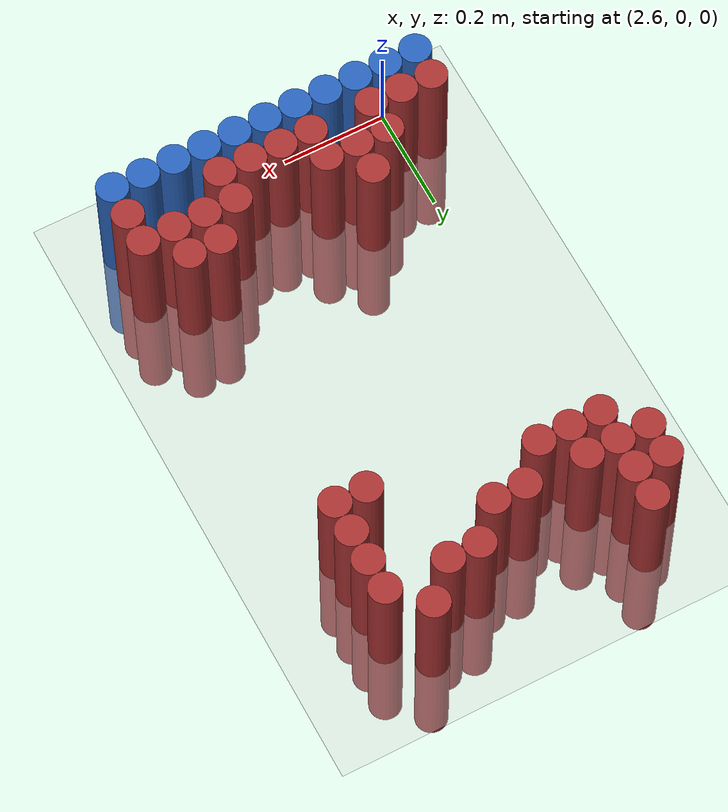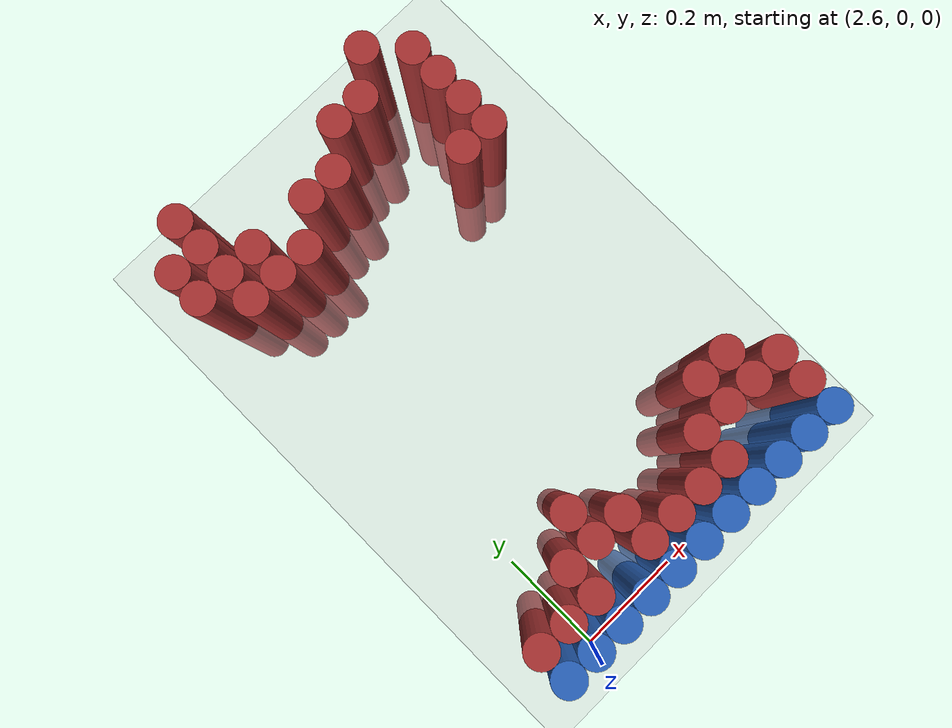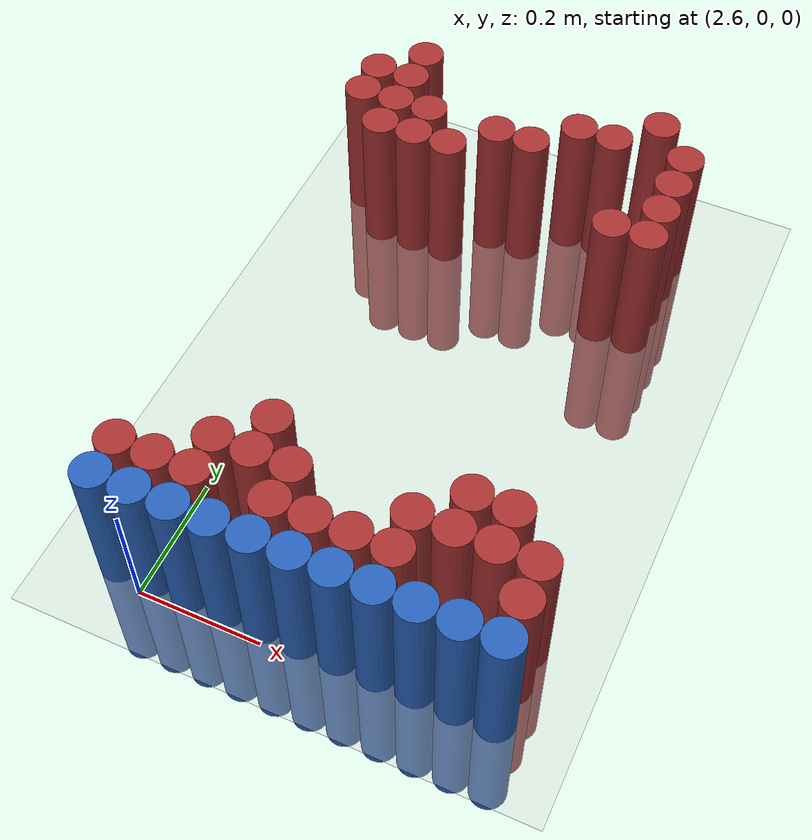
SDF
<sdf version="1.6">
 <world name="default">
  <model name="ground_plane">
   <static>1</static>
   <link name="link">
    <collision name="collision">
     <geometry><plane><normal>0 0 1</normal><size>100 100</size></plane></geometry>
     <surface><friction><ode><mu>100</mu><mu2>50</mu2></ode></friction></surface>
    </collision>
    <visual name="visual">
     <cast_shadows>0</cast_shadows>
     <geometry><plane><normal>0 0 1</normal><size>100 100</size></plane></geometry>
     <material>
      <script><uri>file://media/materials/scripts/gazebo.material</uri><name>Gazebo/Grey</name></script>
     </material>
    </visual>
   </link>
  </model>
  <model name="unit_cylinder_247">
   <static>1</static>
   <pose>2.610000 0.990000 0.000000 0.000000 0.000000 0.000000</pose>
   <link name="link">
    <inertial>
     <mass>1</mass>
     <inertia><ixx>0.145833</ixx><ixy>0</ixy><ixz>0</ixz><iyy>0.145833</iyy><iyz>0</iyz><izz>0.125</izz></inertia>
    </inertial>
    <collision name="collision">
     <geometry><cylinder><radius>0.030000</radius><length>0.5</length></cylinder></geometry>
    </collision>
    <visual name="visual">
     <geometry><cylinder><radius>0.030000</radius><length>0.5</length></cylinder></geometry>
     <material>
      <ambient>0.648000 0.192000 0.192000 1</ambient>
      <diffuse>0.648000 0.192000 0.192000 1</diffuse>
     </material>
     <material>
      <script><name>Gazebo/Grey</name><uri>file://media/materials/scripts/gazebo.material</uri></script>
     </material>
    </visual>
   </link>
  </model>
  <model name="unit_cylinder_248">
   <static>1</static>
   <pose>3.030000 0.990000 0.000000 0.000000 0.000000 0.000000</pose>
   <link name="link">
    <inertial>
     <mass>1</mass>
     <inertia><ixx>0.145833</ixx><ixy>0</ixy><ixz>0</ixz><iyy>0.145833</iyy><iyz>0</iyz><izz>0.125</izz></inertia>
    </inertial>
    <collision name="collision">
     <geometry><cylinder><radius>0.030000</radius><length>0.5</length></cylinder></geometry>
    </collision>
    <visual name="visual">
     <geometry><cylinder><radius>0.030000</radius><length>0.5</length></cylinder></geometry>
     <material>
      <ambient>0.648000 0.192000 0.192000 1</ambient>
      <diffuse>0.648000 0.192000 0.192000 1</diffuse>
     </material>
     <material>
      <script><name>Gazebo/Grey</name><uri>file://media/materials/scripts/gazebo.material</uri></script>
     </material>
    </visual>
   </link>
  </model>
  <model name="unit_cylinder_259">
   <static>1</static>
   <pose>2.550000 0.930000 0.000000 0.000000 0.000000 0.000000</pose>
   <link name="link">
    <inertial>
     <mass>1</mass>
     <inertia><ixx>0.145833</ixx><ixy>0</ixy><ixz>0</ixz><iyy>0.145833</iyy><iyz>0</iyz><izz>0.125</izz></inertia>
    </inertial>
    <collision name="collision">
     <geometry><cylinder><radius>0.030000</radius><length>0.5</length></cylinder></geometry>
    </collision>
    <visual name="visual">
     <geometry><cylinder><radius>0.030000</radius><length>0.5</length></cylinder></geometry>
     <material>
      <ambient>0.648000 0.192000 0.192000 1</ambient>
      <diffuse>0.648000 0.192000 0.192000 1</diffuse>
     </material>
     <material>
      <script><name>Gazebo/Grey</name><uri>file://media/materials/scripts/gazebo.material</uri></script>
     </material>
    </visual>
   </link>
  </model>
  <model name="unit_cylinder_260">
   <static>1</static>
   <pose>2.610000 0.930000 0.000000 0.000000 0.000000 0.000000</pose>
   <link name="link">
    <inertial>
     <mass>1</mass>
     <inertia><ixx>0.145833</ixx><ixy>0</ixy><ixz>0</ixz><iyy>0.145833</iyy><iyz>0</iyz><izz>0.125</izz></inertia>
    </inertial>
    <collision name="collision">
     <geometry><cylinder><radius>0.030000</radius><length>0.5</length></cylinder></geometry>
    </collision>
    <visual name="visual">
     <geometry><cylinder><radius>0.030000</radius><length>0.5</length></cylinder></geometry>
     <material>
      <ambient>0.648000 0.192000 0.192000 1</ambient>
      <diffuse>0.648000 0.192000 0.192000 1</diffuse>
     </material>
     <material>
      <script><name>Gazebo/Grey</name><uri>file://media/materials/scripts/gazebo.material</uri></script>
     </material>
    </visual>
   </link>
  </model>
  <model name="unit_cylinder_261">
   <static>1</static>
   <pose>2.910000 0.930000 0.000000 0.000000 0.000000 0.000000</pose>
   <link name="link">
    <inertial>
     <mass>1</mass>
     <inertia><ixx>0.145833</ixx><ixy>0</ixy><ixz>0</ixz><iyy>0.145833</iyy><iyz>0</iyz><izz>0.125</izz></inertia>
    </inertial>
    <collision name="collision">
     <geometry><cylinder><radius>0.030000</radius><length>0.5</length></cylinder></geometry>
    </collision>
    <visual name="visual">
     <geometry><cylinder><radius>0.030000</radius><length>0.5</length></cylinder></geometry>
     <material>
      <ambient>0.648000 0.192000 0.192000 1</ambient>
      <diffuse>0.648000 0.192000 0.192000 1</diffuse>
     </material>
     <material>
      <script><name>Gazebo/Grey</name><uri>file://media/materials/scripts/gazebo.material</uri></script>
     </material>
    </visual>
   </link>
  </model>
  <model name="unit_cylinder_262">
   <static>1</static>
   <pose>2.970000 0.930000 0.000000 0.000000 0.000000 0.000000</pose>
   <link name="link">
    <inertial>
     <mass>1</mass>
     <inertia><ixx>0.145833</ixx><ixy>0</ixy><ixz>0</ixz><iyy>0.145833</iyy><iyz>0</iyz><izz>0.125</izz></inertia>
    </inertial>
    <collision name="collision">
     <geometry><cylinder><radius>0.030000</radius><length>0.5</length></cylinder></geometry>
    </collision>
    <visual name="visual">
     <geometry><cylinder><radius>0.030000</radius><length>0.5</length></cylinder></geometry>
     <material>
      <ambient>0.648000 0.192000 0.192000 1</ambient>
      <diffuse>0.648000 0.192000 0.192000 1</diffuse>
     </material>
     <material>
      <script><name>Gazebo/Grey</name><uri>file://media/materials/scripts/gazebo.material</uri></script>
     </material>
    </visual>
   </link>
  </model>
  <model name="unit_cylinder_263">
   <static>1</static>
   <pose>3.090000 0.930000 0.000000 0.000000 0.000000 0.000000</pose>
   <link name="link">
    <inertial>
     <mass>1</mass>
     <inertia><ixx>0.145833</ixx><ixy>0</ixy><ixz>0</ixz><iyy>0.145833</iyy><iyz>0</iyz><izz>0.125</izz></inertia>
    </inertial>
    <collision name="collision">
     <geometry><cylinder><radius>0.030000</radius><length>0.5</length></cylinder></geometry>
    </collision>
    <visual name="visual">
     <geometry><cylinder><radius>0.030000</radius><length>0.5</length></cylinder></geometry>
     <material>
      <ambient>0.648000 0.192000 0.192000 1</ambient>
      <diffuse>0.648000 0.192000 0.192000 1</diffuse>
     </material>
     <material>
      <script><name>Gazebo/Grey</name><uri>file://media/materials/scripts/gazebo.material</uri></script>
     </material>
    </visual>
   </link>
  </model>
  <model name="unit_cylinder_271">
   <static>1</static>
   <pose>2.550000 0.870000 0.000000 0.000000 0.000000 0.000000</pose>
   <link name="link">
    <inertial>
     <mass>1</mass>
     <inertia><ixx>0.145833</ixx><ixy>0</ixy><ixz>0</ixz><iyy>0.145833</iyy><iyz>0</iyz><izz>0.125</izz></inertia>
    </inertial>
    <collision name="collision">
     <geometry><cylinder><radius>0.030000</radius><length>0.5</length></cylinder></geometry>
    </collision>
    <visual name="visual">
     <geometry><cylinder><radius>0.030000</radius><length>0.5</length></cylinder></geometry>
     <material>
      <ambient>0.648000 0.192000 0.192000 1</ambient>
      <diffuse>0.648000 0.192000 0.192000 1</diffuse>
     </material>
     <material>
      <script><name>Gazebo/Grey</name><uri>file://media/materials/scripts/gazebo.material</uri></script>
     </material>
    </visual>
   </link>
  </model>
  <model name="unit_cylinder_272">
   <static>1</static>
   <pose>2.610000 0.870000 0.000000 0.000000 0.000000 0.000000</pose>
   <link name="link">
    <inertial>
     <mass>1</mass>
     <inertia><ixx>0.145833</ixx><ixy>0</ixy><ixz>0</ixz><iyy>0.145833</iyy><iyz>0</iyz><izz>0.125</izz></inertia>
    </inertial>
    <collision name="collision">
     <geometry><cylinder><radius>0.030000</radius><length>0.5</length></cylinder></geometry>
    </collision>
    <visual name="visual">
     <geometry><cylinder><radius>0.030000</radius><length>0.5</length></cylinder></geometry>
     <material>
      <ambient>0.648000 0.192000 0.192000 1</ambient>
      <diffuse>0.648000 0.192000 0.192000 1</diffuse>
     </material>
     <material>
      <script><name>Gazebo/Grey</name><uri>file://media/materials/scripts/gazebo.material</uri></script>
     </material>
    </visual>
   </link>
  </model>
  <model name="unit_cylinder_273">
   <static>1</static>
   <pose>2.670000 0.870000 0.000000 0.000000 0.000000 0.000000</pose>
   <link name="link">
    <inertial>
     <mass>1</mass>
     <inertia><ixx>0.145833</ixx><ixy>0</ixy><ixz>0</ixz><iyy>0.145833</iyy><iyz>0</iyz><izz>0.125</izz></inertia>
    </inertial>
    <collision name="collision">
     <geometry><cylinder><radius>0.030000</radius><length>0.5</length></cylinder></geometry>
    </collision>
    <visual name="visual">
     <geometry><cylinder><radius>0.030000</radius><length>0.5</length></cylinder></geometry>
     <material>
      <ambient>0.648000 0.192000 0.192000 1</ambient>
      <diffuse>0.648000 0.192000 0.192000 1</diffuse>
     </material>
     <material>
      <script><name>Gazebo/Grey</name><uri>file://media/materials/scripts/gazebo.material</uri></script>
     </material>
    </visual>
   </link>
  </model>
  <model name="unit_cylinder_274">
   <static>1</static>
   <pose>2.790000 0.870000 0.000000 0.000000 0.000000 0.000000</pose>
   <link name="link">
    <inertial>
     <mass>1</mass>
     <inertia><ixx>0.145833</ixx><ixy>0</ixy><ixz>0</ixz><iyy>0.145833</iyy><iyz>0</iyz><izz>0.125</izz></inertia>
    </inertial>
    <collision name="collision">
     <geometry><cylinder><radius>0.030000</radius><length>0.5</length></cylinder></geometry>
    </collision>
    <visual name="visual">
     <geometry><cylinder><radius>0.030000</radius><length>0.5</length></cylinder></geometry>
     <material>
      <ambient>0.648000 0.192000 0.192000 1</ambient>
      <diffuse>0.648000 0.192000 0.192000 1</diffuse>
     </material>
     <material>
      <script><name>Gazebo/Grey</name><uri>file://media/materials/scripts/gazebo.material</uri></script>
     </material>
    </visual>
   </link>
  </model>
  <model name="unit_cylinder_275">
   <static>1</static>
   <pose>2.850000 0.870000 0.000000 0.000000 0.000000 0.000000</pose>
   <link name="link">
    <inertial>
     <mass>1</mass>
     <inertia><ixx>0.145833</ixx><ixy>0</ixy><ixz>0</ixz><iyy>0.145833</iyy><iyz>0</iyz><izz>0.125</izz></inertia>
    </inertial>
    <collision name="collision">
     <geometry><cylinder><radius>0.030000</radius><length>0.5</length></cylinder></geometry>
    </collision>
    <visual name="visual">
     <geometry><cylinder><radius>0.030000</radius><length>0.5</length></cylinder></geometry>
     <material>
      <ambient>0.648000 0.192000 0.192000 1</ambient>
      <diffuse>0.648000 0.192000 0.192000 1</diffuse>
     </material>
     <material>
      <script><name>Gazebo/Grey</name><uri>file://media/materials/scripts/gazebo.material</uri></script>
     </material>
    </visual>
   </link>
  </model>
  <model name="unit_cylinder_276">
   <static>1</static>
   <pose>3.090000 0.870000 0.000000 0.000000 0.000000 0.000000</pose>
   <link name="link">
    <inertial>
     <mass>1</mass>
     <inertia><ixx>0.145833</ixx><ixy>0</ixy><ixz>0</ixz><iyy>0.145833</iyy><iyz>0</iyz><izz>0.125</izz></inertia>
    </inertial>
    <collision name="collision">
     <geometry><cylinder><radius>0.030000</radius><length>0.5</length></cylinder></geometry>
    </collision>
    <visual name="visual">
     <geometry><cylinder><radius>0.030000</radius><length>0.5</length></cylinder></geometry>
     <material>
      <ambient>0.648000 0.192000 0.192000 1</ambient>
      <diffuse>0.648000 0.192000 0.192000 1</diffuse>
     </material>
     <material>
      <script><name>Gazebo/Grey</name><uri>file://media/materials/scripts/gazebo.material</uri></script>
     </material>
    </visual>
   </link>
  </model>
  <model name="unit_cylinder_279">
   <static>1</static>
   <pose>2.610000 0.810000 0.000000 0.000000 0.000000 0.000000</pose>
   <link name="link">
    <inertial>
     <mass>1</mass>
     <inertia><ixx>0.145833</ixx><ixy>0</ixy><ixz>0</ixz><iyy>0.145833</iyy><iyz>0</iyz><izz>0.125</izz></inertia>
    </inertial>
    <collision name="collision">
     <geometry><cylinder><radius>0.030000</radius><length>0.5</length></cylinder></geometry>
    </collision>
    <visual name="visual">
     <geometry><cylinder><radius>0.030000</radius><length>0.5</length></cylinder></geometry>
     <material>
      <ambient>0.648000 0.192000 0.192000 1</ambient>
      <diffuse>0.648000 0.192000 0.192000 1</diffuse>
     </material>
     <material>
      <script><name>Gazebo/Grey</name><uri>file://media/materials/scripts/gazebo.material</uri></script>
     </material>
    </visual>
   </link>
  </model>
  <model name="unit_cylinder_280">
   <static>1</static>
   <pose>2.670000 0.810000 0.000000 0.000000 0.000000 0.000000</pose>
   <link name="link">
    <inertial>
     <mass>1</mass>
     <inertia><ixx>0.145833</ixx><ixy>0</ixy><ixz>0</ixz><iyy>0.145833</iyy><iyz>0</iyz><izz>0.125</izz></inertia>
    </inertial>
    <collision name="collision">
     <geometry><cylinder><radius>0.030000</radius><length>0.5</length></cylinder></geometry>
    </collision>
    <visual name="visual">
     <geometry><cylinder><radius>0.030000</radius><length>0.5</length></cylinder></geometry>
     <material>
      <ambient>0.648000 0.192000 0.192000 1</ambient>
      <diffuse>0.648000 0.192000 0.192000 1</diffuse>
     </material>
     <material>
      <script><name>Gazebo/Grey</name><uri>file://media/materials/scripts/gazebo.material</uri></script>
     </material>
    </visual>
   </link>
  </model>
  <model name="unit_cylinder_281">
   <static>1</static>
   <pose>2.730000 0.810000 0.000000 0.000000 0.000000 0.000000</pose>
   <link name="link">
    <inertial>
     <mass>1</mass>
     <inertia><ixx>0.145833</ixx><ixy>0</ixy><ixz>0</ixz><iyy>0.145833</iyy><iyz>0</iyz><izz>0.125</izz></inertia>
    </inertial>
    <collision name="collision">
     <geometry><cylinder><radius>0.030000</radius><length>0.5</length></cylinder></geometry>
    </collision>
    <visual name="visual">
     <geometry><cylinder><radius>0.030000</radius><length>0.5</length></cylinder></geometry>
     <material>
      <ambient>0.648000 0.192000 0.192000 1</ambient>
      <diffuse>0.648000 0.192000 0.192000 1</diffuse>
     </material>
     <material>
      <script><name>Gazebo/Grey</name><uri>file://media/materials/scripts/gazebo.material</uri></script>
     </material>
    </visual>
   </link>
  </model>
  <model name="unit_cylinder_282">
   <static>1</static>
   <pose>3.090000 0.810000 0.000000 0.000000 0.000000 0.000000</pose>
   <link name="link">
    <inertial>
     <mass>1</mass>
     <inertia><ixx>0.145833</ixx><ixy>0</ixy><ixz>0</ixz><iyy>0.145833</iyy><iyz>0</iyz><izz>0.125</izz></inertia>
    </inertial>
    <collision name="collision">
     <geometry><cylinder><radius>0.030000</radius><length>0.5</length></cylinder></geometry>
    </collision>
    <visual name="visual">
     <geometry><cylinder><radius>0.030000</radius><length>0.5</length></cylinder></geometry>
     <material>
      <ambient>0.648000 0.192000 0.192000 1</ambient>
      <diffuse>0.648000 0.192000 0.192000 1</diffuse>
     </material>
     <material>
      <script><name>Gazebo/Grey</name><uri>file://media/materials/scripts/gazebo.material</uri></script>
     </material>
    </visual>
   </link>
  </model>
  <model name="unit_cylinder_289">
   <static>1</static>
   <pose>3.030000 0.750000 0.000000 0.000000 0.000000 0.000000</pose>
   <link name="link">
    <inertial>
     <mass>1</mass>
     <inertia><ixx>0.145833</ixx><ixy>0</ixy><ixz>0</ixz><iyy>0.145833</iyy><iyz>0</iyz><izz>0.125</izz></inertia>
    </inertial>
    <collision name="collision">
     <geometry><cylinder><radius>0.030000</radius><length>0.5</length></cylinder></geometry>
    </collision>
    <visual name="visual">
     <geometry><cylinder><radius>0.030000</radius><length>0.5</length></cylinder></geometry>
     <material>
      <ambient>0.648000 0.192000 0.192000 1</ambient>
      <diffuse>0.648000 0.192000 0.192000 1</diffuse>
     </material>
     <material>
      <script><name>Gazebo/Grey</name><uri>file://media/materials/scripts/gazebo.material</uri></script>
     </material>
    </visual>
   </link>
  </model>
  <model name="unit_cylinder_290">
   <static>1</static>
   <pose>3.090000 0.750000 0.000000 0.000000 0.000000 0.000000</pose>
   <link name="link">
    <inertial>
     <mass>1</mass>
     <inertia><ixx>0.145833</ixx><ixy>0</ixy><ixz>0</ixz><iyy>0.145833</iyy><iyz>0</iyz><izz>0.125</izz></inertia>
    </inertial>
    <collision name="collision">
     <geometry><cylinder><radius>0.030000</radius><length>0.5</length></cylinder></geometry>
    </collision>
    <visual name="visual">
     <geometry><cylinder><radius>0.030000</radius><length>0.5</length></cylinder></geometry>
     <material>
      <ambient>0.648000 0.192000 0.192000 1</ambient>
      <diffuse>0.648000 0.192000 0.192000 1</diffuse>
     </material>
     <material>
      <script><name>Gazebo/Grey</name><uri>file://media/materials/scripts/gazebo.material</uri></script>
     </material>
    </visual>
   </link>
  </model>
  <model name="unit_cylinder_314">
   <static>1</static>
   <pose>2.730000 0.210000 0.000000 0.000000 0.000000 0.000000</pose>
   <link name="link">
    <inertial>
     <mass>1</mass>
     <inertia><ixx>0.145833</ixx><ixy>0</ixy><ixz>0</ixz><iyy>0.145833</iyy><iyz>0</iyz><izz>0.125</izz></inertia>
    </inertial>
    <collision name="collision">
     <geometry><cylinder><radius>0.030000</radius><length>0.5</length></cylinder></geometry>
    </collision>
    <visual name="visual">
     <geometry><cylinder><radius>0.030000</radius><length>0.5</length></cylinder></geometry>
     <material>
      <ambient>0.648000 0.192000 0.192000 1</ambient>
      <diffuse>0.648000 0.192000 0.192000 1</diffuse>
     </material>
     <material>
      <script><name>Gazebo/Grey</name><uri>file://media/materials/scripts/gazebo.material</uri></script>
     </material>
    </visual>
   </link>
  </model>
  <model name="unit_cylinder_315">
   <static>1</static>
   <pose>3.030000 0.210000 0.000000 0.000000 0.000000 0.000000</pose>
   <link name="link">
    <inertial>
     <mass>1</mass>
     <inertia><ixx>0.145833</ixx><ixy>0</ixy><ixz>0</ixz><iyy>0.145833</iyy><iyz>0</iyz><izz>0.125</izz></inertia>
    </inertial>
    <collision name="collision">
     <geometry><cylinder><radius>0.030000</radius><length>0.5</length></cylinder></geometry>
    </collision>
    <visual name="visual">
     <geometry><cylinder><radius>0.030000</radius><length>0.5</length></cylinder></geometry>
     <material>
      <ambient>0.648000 0.192000 0.192000 1</ambient>
      <diffuse>0.648000 0.192000 0.192000 1</diffuse>
     </material>
     <material>
      <script><name>Gazebo/Grey</name><uri>file://media/materials/scripts/gazebo.material</uri></script>
     </material>
    </visual>
   </link>
  </model>
  <model name="unit_cylinder_316">
   <static>1</static>
   <pose>3.090000 0.210000 0.000000 0.000000 0.000000 0.000000</pose>
   <link name="link">
    <inertial>
     <mass>1</mass>
     <inertia><ixx>0.145833</ixx><ixy>0</ixy><ixz>0</ixz><iyy>0.145833</iyy><iyz>0</iyz><izz>0.125</izz></inertia>
    </inertial>
    <collision name="collision">
     <geometry><cylinder><radius>0.030000</radius><length>0.5</length></cylinder></geometry>
    </collision>
    <visual name="visual">
     <geometry><cylinder><radius>0.030000</radius><length>0.5</length></cylinder></geometry>
     <material>
      <ambient>0.648000 0.192000 0.192000 1</ambient>
      <diffuse>0.648000 0.192000 0.192000 1</diffuse>
     </material>
     <material>
      <script><name>Gazebo/Grey</name><uri>file://media/materials/scripts/gazebo.material</uri></script>
     </material>
    </visual>
   </link>
  </model>
  <model name="unit_cylinder_325">
   <static>1</static>
   <pose>2.670000 0.150000 0.000000 0.000000 0.000000 0.000000</pose>
   <link name="link">
    <inertial>
     <mass>1</mass>
     <inertia><ixx>0.145833</ixx><ixy>0</ixy><ixz>0</ixz><iyy>0.145833</iyy><iyz>0</iyz><izz>0.125</izz></inertia>
    </inertial>
    <collision name="collision">
     <geometry><cylinder><radius>0.030000</radius><length>0.5</length></cylinder></geometry>
    </collision>
    <visual name="visual">
     <geometry><cylinder><radius>0.030000</radius><length>0.5</length></cylinder></geometry>
     <material>
      <ambient>0.648000 0.192000 0.192000 1</ambient>
      <diffuse>0.648000 0.192000 0.192000 1</diffuse>
     </material>
     <material>
      <script><name>Gazebo/Grey</name><uri>file://media/materials/scripts/gazebo.material</uri></script>
     </material>
    </visual>
   </link>
  </model>
  <model name="unit_cylinder_326">
   <static>1</static>
   <pose>2.730000 0.150000 0.000000 0.000000 0.000000 0.000000</pose>
   <link name="link">
    <inertial>
     <mass>1</mass>
     <inertia><ixx>0.145833</ixx><ixy>0</ixy><ixz>0</ixz><iyy>0.145833</iyy><iyz>0</iyz><izz>0.125</izz></inertia>
    </inertial>
    <collision name="collision">
     <geometry><cylinder><radius>0.030000</radius><length>0.5</length></cylinder></geometry>
    </collision>
    <visual name="visual">
     <geometry><cylinder><radius>0.030000</radius><length>0.5</length></cylinder></geometry>
     <material>
      <ambient>0.648000 0.192000 0.192000 1</ambient>
      <diffuse>0.648000 0.192000 0.192000 1</diffuse>
     </material>
     <material>
      <script><name>Gazebo/Grey</name><uri>file://media/materials/scripts/gazebo.material</uri></script>
     </material>
    </visual>
   </link>
  </model>
  <model name="unit_cylinder_327">
   <static>1</static>
   <pose>2.790000 0.150000 0.000000 0.000000 0.000000 0.000000</pose>
   <link name="link">
    <inertial>
     <mass>1</mass>
     <inertia><ixx>0.145833</ixx><ixy>0</ixy><ixz>0</ixz><iyy>0.145833</iyy><iyz>0</iyz><izz>0.125</izz></inertia>
    </inertial>
    <collision name="collision">
     <geometry><cylinder><radius>0.030000</radius><length>0.5</length></cylinder></geometry>
    </collision>
    <visual name="visual">
     <geometry><cylinder><radius>0.030000</radius><length>0.5</length></cylinder></geometry>
     <material>
      <ambient>0.648000 0.192000 0.192000 1</ambient>
      <diffuse>0.648000 0.192000 0.192000 1</diffuse>
     </material>
     <material>
      <script><name>Gazebo/Grey</name><uri>file://media/materials/scripts/gazebo.material</uri></script>
     </material>
    </visual>
   </link>
  </model>
  <model name="unit_cylinder_328">
   <static>1</static>
   <pose>2.970000 0.150000 0.000000 0.000000 0.000000 0.000000</pose>
   <link name="link">
    <inertial>
     <mass>1</mass>
     <inertia><ixx>0.145833</ixx><ixy>0</ixy><ixz>0</ixz><iyy>0.145833</iyy><iyz>0</iyz><izz>0.125</izz></inertia>
    </inertial>
    <collision name="collision">
     <geometry><cylinder><radius>0.030000</radius><length>0.5</length></cylinder></geometry>
    </collision>
    <visual name="visual">
     <geometry><cylinder><radius>0.030000</radius><length>0.5</length></cylinder></geometry>
     <material>
      <ambient>0.648000 0.192000 0.192000 1</ambient>
      <diffuse>0.648000 0.192000 0.192000 1</diffuse>
     </material>
     <material>
      <script><name>Gazebo/Grey</name><uri>file://media/materials/scripts/gazebo.material</uri></script>
     </material>
    </visual>
   </link>
  </model>
  <model name="unit_cylinder_329">
   <static>1</static>
   <pose>3.030000 0.150000 0.000000 0.000000 0.000000 0.000000</pose>
   <link name="link">
    <inertial>
     <mass>1</mass>
     <inertia><ixx>0.145833</ixx><ixy>0</ixy><ixz>0</ixz><iyy>0.145833</iyy><iyz>0</iyz><izz>0.125</izz></inertia>
    </inertial>
    <collision name="collision">
     <geometry><cylinder><radius>0.030000</radius><length>0.5</length></cylinder></geometry>
    </collision>
    <visual name="visual">
     <geometry><cylinder><radius>0.030000</radius><length>0.5</length></cylinder></geometry>
     <material>
      <ambient>0.648000 0.192000 0.192000 1</ambient>
      <diffuse>0.648000 0.192000 0.192000 1</diffuse>
     </material>
     <material>
      <script><name>Gazebo/Grey</name><uri>file://media/materials/scripts/gazebo.material</uri></script>
     </material>
    </visual>
   </link>
  </model>
  <model name="unit_cylinder_330">
   <static>1</static>
   <pose>3.090000 0.150000 0.000000 0.000000 0.000000 0.000000</pose>
   <link name="link">
    <inertial>
     <mass>1</mass>
     <inertia><ixx>0.145833</ixx><ixy>0</ixy><ixz>0</ixz><iyy>0.145833</iyy><iyz>0</iyz><izz>0.125</izz></inertia>
    </inertial>
    <collision name="collision">
     <geometry><cylinder><radius>0.030000</radius><length>0.5</length></cylinder></geometry>
    </collision>
    <visual name="visual">
     <geometry><cylinder><radius>0.030000</radius><length>0.5</length></cylinder></geometry>
     <material>
      <ambient>0.648000 0.192000 0.192000 1</ambient>
      <diffuse>0.648000 0.192000 0.192000 1</diffuse>
     </material>
     <material>
      <script><name>Gazebo/Grey</name><uri>file://media/materials/scripts/gazebo.material</uri></script>
     </material>
    </visual>
   </link>
  </model>
  <model name="unit_cylinder_331">
   <static>1</static>
   <pose>3.150000 0.150000 0.000000 0.000000 0.000000 0.000000</pose>
   <link name="link">
    <inertial>
     <mass>1</mass>
     <inertia><ixx>0.145833</ixx><ixy>0</ixy><ixz>0</ixz><iyy>0.145833</iyy><iyz>0</iyz><izz>0.125</izz></inertia>
    </inertial>
    <collision name="collision">
     <geometry><cylinder><radius>0.030000</radius><length>0.5</length></cylinder></geometry>
    </collision>
    <visual name="visual">
     <geometry><cylinder><radius>0.030000</radius><length>0.5</length></cylinder></geometry>
     <material>
      <ambient>0.648000 0.192000 0.192000 1</ambient>
      <diffuse>0.648000 0.192000 0.192000 1</diffuse>
     </material>
     <material>
      <script><name>Gazebo/Grey</name><uri>file://media/materials/scripts/gazebo.material</uri></script>
     </material>
    </visual>
   </link>
  </model>
  <model name="unit_cylinder_342">
   <static>1</static>
   <pose>2.550000 0.090000 0.000000 0.000000 0.000000 0.000000</pose>
   <link name="link">
    <inertial>
     <mass>1</mass>
     <inertia><ixx>0.145833</ixx><ixy>0</ixy><ixz>0</ixz><iyy>0.145833</iyy><iyz>0</iyz><izz>0.125</izz></inertia>
    </inertial>
    <collision name="collision">
     <geometry><cylinder><radius>0.030000</radius><length>0.5</length></cylinder></geometry>
    </collision>
    <visual name="visual">
     <geometry><cylinder><radius>0.030000</radius><length>0.5</length></cylinder></geometry>
     <material>
      <ambient>0.648000 0.192000 0.192000 1</ambient>
      <diffuse>0.648000 0.192000 0.192000 1</diffuse>
     </material>
     <material>
      <script><name>Gazebo/Grey</name><uri>file://media/materials/scripts/gazebo.material</uri></script>
     </material>
    </visual>
   </link>
  </model>
  <model name="unit_cylinder_343">
   <static>1</static>
   <pose>2.610000 0.090000 0.000000 0.000000 0.000000 0.000000</pose>
   <link name="link">
    <inertial>
     <mass>1</mass>
     <inertia><ixx>0.145833</ixx><ixy>0</ixy><ixz>0</ixz><iyy>0.145833</iyy><iyz>0</iyz><izz>0.125</izz></inertia>
    </inertial>
    <collision name="collision">
     <geometry><cylinder><radius>0.030000</radius><length>0.5</length></cylinder></geometry>
    </collision>
    <visual name="visual">
     <geometry><cylinder><radius>0.030000</radius><length>0.5</length></cylinder></geometry>
     <material>
      <ambient>0.648000 0.192000 0.192000 1</ambient>
      <diffuse>0.648000 0.192000 0.192000 1</diffuse>
     </material>
     <material>
      <script><name>Gazebo/Grey</name><uri>file://media/materials/scripts/gazebo.material</uri></script>
     </material>
    </visual>
   </link>
  </model>
  <model name="unit_cylinder_344">
   <static>1</static>
   <pose>2.670000 0.090000 0.000000 0.000000 0.000000 0.000000</pose>
   <link name="link">
    <inertial>
     <mass>1</mass>
     <inertia><ixx>0.145833</ixx><ixy>0</ixy><ixz>0</ixz><iyy>0.145833</iyy><iyz>0</iyz><izz>0.125</izz></inertia>
    </inertial>
    <collision name="collision">
     <geometry><cylinder><radius>0.030000</radius><length>0.5</length></cylinder></geometry>
    </collision>
    <visual name="visual">
     <geometry><cylinder><radius>0.030000</radius><length>0.5</length></cylinder></geometry>
     <material>
      <ambient>0.648000 0.192000 0.192000 1</ambient>
      <diffuse>0.648000 0.192000 0.192000 1</diffuse>
     </material>
     <material>
      <script><name>Gazebo/Grey</name><uri>file://media/materials/scripts/gazebo.material</uri></script>
     </material>
    </visual>
   </link>
  </model>
  <model name="unit_cylinder_345">
   <static>1</static>
   <pose>2.790000 0.090000 0.000000 0.000000 0.000000 0.000000</pose>
   <link name="link">
    <inertial>
     <mass>1</mass>
     <inertia><ixx>0.145833</ixx><ixy>0</ixy><ixz>0</ixz><iyy>0.145833</iyy><iyz>0</iyz><izz>0.125</izz></inertia>
    </inertial>
    <collision name="collision">
     <geometry><cylinder><radius>0.030000</radius><length>0.5</length></cylinder></geometry>
    </collision>
    <visual name="visual">
     <geometry><cylinder><radius>0.030000</radius><length>0.5</length></cylinder></geometry>
     <material>
      <ambient>0.648000 0.192000 0.192000 1</ambient>
      <diffuse>0.648000 0.192000 0.192000 1</diffuse>
     </material>
     <material>
      <script><name>Gazebo/Grey</name><uri>file://media/materials/scripts/gazebo.material</uri></script>
     </material>
    </visual>
   </link>
  </model>
  <model name="unit_cylinder_346">
   <static>1</static>
   <pose>2.850000 0.090000 0.000000 0.000000 0.000000 0.000000</pose>
   <link name="link">
    <inertial>
     <mass>1</mass>
     <inertia><ixx>0.145833</ixx><ixy>0</ixy><ixz>0</ixz><iyy>0.145833</iyy><iyz>0</iyz><izz>0.125</izz></inertia>
    </inertial>
    <collision name="collision">
     <geometry><cylinder><radius>0.030000</radius><length>0.5</length></cylinder></geometry>
    </collision>
    <visual name="visual">
     <geometry><cylinder><radius>0.030000</radius><length>0.5</length></cylinder></geometry>
     <material>
      <ambient>0.648000 0.192000 0.192000 1</ambient>
      <diffuse>0.648000 0.192000 0.192000 1</diffuse>
     </material>
     <material>
      <script><name>Gazebo/Grey</name><uri>file://media/materials/scripts/gazebo.material</uri></script>
     </material>
    </visual>
   </link>
  </model>
  <model name="unit_cylinder_347">
   <static>1</static>
   <pose>2.910000 0.090000 0.000000 0.000000 0.000000 0.000000</pose>
   <link name="link">
    <inertial>
     <mass>1</mass>
     <inertia><ixx>0.145833</ixx><ixy>0</ixy><ixz>0</ixz><iyy>0.145833</iyy><iyz>0</iyz><izz>0.125</izz></inertia>
    </inertial>
    <collision name="collision">
     <geometry><cylinder><radius>0.030000</radius><length>0.5</length></cylinder></geometry>
    </collision>
    <visual name="visual">
     <geometry><cylinder><radius>0.030000</radius><length>0.5</length></cylinder></geometry>
     <material>
      <ambient>0.648000 0.192000 0.192000 1</ambient>
      <diffuse>0.648000 0.192000 0.192000 1</diffuse>
     </material>
     <material>
      <script><name>Gazebo/Grey</name><uri>file://media/materials/scripts/gazebo.material</uri></script>
     </material>
    </visual>
   </link>
  </model>
  <model name="unit_cylinder_348">
   <static>1</static>
   <pose>2.970000 0.090000 0.000000 0.000000 0.000000 0.000000</pose>
   <link name="link">
    <inertial>
     <mass>1</mass>
     <inertia><ixx>0.145833</ixx><ixy>0</ixy><ixz>0</ixz><iyy>0.145833</iyy><iyz>0</iyz><izz>0.125</izz></inertia>
    </inertial>
    <collision name="collision">
     <geometry><cylinder><radius>0.030000</radius><length>0.5</length></cylinder></geometry>
    </collision>
    <visual name="visual">
     <geometry><cylinder><radius>0.030000</radius><length>0.5</length></cylinder></geometry>
     <material>
      <ambient>0.648000 0.192000 0.192000 1</ambient>
      <diffuse>0.648000 0.192000 0.192000 1</diffuse>
     </material>
     <material>
      <script><name>Gazebo/Grey</name><uri>file://media/materials/scripts/gazebo.material</uri></script>
     </material>
    </visual>
   </link>
  </model>
  <model name="unit_cylinder_349">
   <static>1</static>
   <pose>3.150000 0.090000 0.000000 0.000000 0.000000 0.000000</pose>
   <link name="link">
    <inertial>
     <mass>1</mass>
     <inertia><ixx>0.145833</ixx><ixy>0</ixy><ixz>0</ixz><iyy>0.145833</iyy><iyz>0</iyz><izz>0.125</izz></inertia>
    </inertial>
    <collision name="collision">
     <geometry><cylinder><radius>0.030000</radius><length>0.5</length></cylinder></geometry>
    </collision>
    <visual name="visual">
     <geometry><cylinder><radius>0.030000</radius><length>0.5</length></cylinder></geometry>
     <material>
      <ambient>0.648000 0.192000 0.192000 1</ambient>
      <diffuse>0.648000 0.192000 0.192000 1</diffuse>
     </material>
     <material>
      <script><name>Gazebo/Grey</name><uri>file://media/materials/scripts/gazebo.material</uri></script>
     </material>
    </visual>
   </link>
  </model>
  <model name="unit_cylinder_363">
   <static>1</static>
   <pose>2.550000 0.030000 0.000000 0.000000 0.000000 0.000000</pose>
   <link name="link">
    <inertial>
     <mass>1</mass>
     <inertia><ixx>0.145833</ixx><ixy>0</ixy><ixz>0</ixz><iyy>0.145833</iyy><iyz>0</iyz><izz>0.125</izz></inertia>
    </inertial>
    <collision name="collision">
     <geometry><cylinder><radius>0.030000</radius><length>0.5</length></cylinder></geometry>
    </collision>
    <visual name="visual">
     <geometry><cylinder><radius>0.030000</radius><length>0.5</length></cylinder></geometry>
     <material>
      <ambient>0.152000 0.379000 0.720000 1</ambient>
      <diffuse>0.152000 0.379000 0.720000 1</diffuse>
     </material>
     <material>
      <script><name>Gazebo/Grey</name><uri>file://media/materials/scripts/gazebo.material</uri></script>
     </material>
    </visual>
   </link>
  </model>
  <model name="unit_cylinder_364">
   <static>1</static>
   <pose>2.610000 0.030000 0.000000 0.000000 0.000000 0.000000</pose>
   <link name="link">
    <inertial>
     <mass>1</mass>
     <inertia><ixx>0.145833</ixx><ixy>0</ixy><ixz>0</ixz><iyy>0.145833</iyy><iyz>0</iyz><izz>0.125</izz></inertia>
    </inertial>
    <collision name="collision">
     <geometry><cylinder><radius>0.030000</radius><length>0.5</length></cylinder></geometry>
    </collision>
    <visual name="visual">
     <geometry><cylinder><radius>0.030000</radius><length>0.5</length></cylinder></geometry>
     <material>
      <ambient>0.152000 0.379000 0.720000 1</ambient>
      <diffuse>0.152000 0.379000 0.720000 1</diffuse>
     </material>
     <material>
      <script><name>Gazebo/Grey</name><uri>file://media/materials/scripts/gazebo.material</uri></script>
     </material>
    </visual>
   </link>
  </model>
  <model name="unit_cylinder_365">
   <static>1</static>
   <pose>2.670000 0.030000 0.000000 0.000000 0.000000 0.000000</pose>
   <link name="link">
    <inertial>
     <mass>1</mass>
     <inertia><ixx>0.145833</ixx><ixy>0</ixy><ixz>0</ixz><iyy>0.145833</iyy><iyz>0</iyz><izz>0.125</izz></inertia>
    </inertial>
    <collision name="collision">
     <geometry><cylinder><radius>0.030000</radius><length>0.5</length></cylinder></geometry>
    </collision>
    <visual name="visual">
     <geometry><cylinder><radius>0.030000</radius><length>0.5</length></cylinder></geometry>
     <material>
      <ambient>0.152000 0.379000 0.720000 1</ambient>
      <diffuse>0.152000 0.379000 0.720000 1</diffuse>
     </material>
     <material>
      <script><name>Gazebo/Grey</name><uri>file://media/materials/scripts/gazebo.material</uri></script>
     </material>
    </visual>
   </link>
  </model>
  <model name="unit_cylinder_366">
   <static>1</static>
   <pose>2.730000 0.030000 0.000000 0.000000 0.000000 0.000000</pose>
   <link name="link">
    <inertial>
     <mass>1</mass>
     <inertia><ixx>0.145833</ixx><ixy>0</ixy><ixz>0</ixz><iyy>0.145833</iyy><iyz>0</iyz><izz>0.125</izz></inertia>
    </inertial>
    <collision name="collision">
     <geometry><cylinder><radius>0.030000</radius><length>0.5</length></cylinder></geometry>
    </collision>
    <visual name="visual">
     <geometry><cylinder><radius>0.030000</radius><length>0.5</length></cylinder></geometry>
     <material>
      <ambient>0.152000 0.379000 0.720000 1</ambient>
      <diffuse>0.152000 0.379000 0.720000 1</diffuse>
     </material>
     <material>
      <script><name>Gazebo/Grey</name><uri>file://media/materials/scripts/gazebo.material</uri></script>
     </material>
    </visual>
   </link>
  </model>
  <model name="unit_cylinder_367">
   <static>1</static>
   <pose>2.790000 0.030000 0.000000 0.000000 0.000000 0.000000</pose>
   <link name="link">
    <inertial>
     <mass>1</mass>
     <inertia><ixx>0.145833</ixx><ixy>0</ixy><ixz>0</ixz><iyy>0.145833</iyy><iyz>0</iyz><izz>0.125</izz></inertia>
    </inertial>
    <collision name="collision">
     <geometry><cylinder><radius>0.030000</radius><length>0.5</length></cylinder></geometry>
    </collision>
    <visual name="visual">
     <geometry><cylinder><radius>0.030000</radius><length>0.5</length></cylinder></geometry>
     <material>
      <ambient>0.152000 0.379000 0.720000 1</ambient>
      <diffuse>0.152000 0.379000 0.720000 1</diffuse>
     </material>
     <material>
      <script><name>Gazebo/Grey</name><uri>file://media/materials/scripts/gazebo.material</uri></script>
     </material>
    </visual>
   </link>
  </model>
  <model name="unit_cylinder_368">
   <static>1</static>
   <pose>2.850000 0.030000 0.000000 0.000000 0.000000 0.000000</pose>
   <link name="link">
    <inertial>
     <mass>1</mass>
     <inertia><ixx>0.145833</ixx><ixy>0</ixy><ixz>0</ixz><iyy>0.145833</iyy><iyz>0</iyz><izz>0.125</izz></inertia>
    </inertial>
    <collision name="collision">
     <geometry><cylinder><radius>0.030000</radius><length>0.5</length></cylinder></geometry>
    </collision>
    <visual name="visual">
     <geometry><cylinder><radius>0.030000</radius><length>0.5</length></cylinder></geometry>
     <material>
      <ambient>0.152000 0.379000 0.720000 1</ambient>
      <diffuse>0.152000 0.379000 0.720000 1</diffuse>
     </material>
     <material>
      <script><name>Gazebo/Grey</name><uri>file://media/materials/scripts/gazebo.material</uri></script>
     </material>
    </visual>
   </link>
  </model>
  <model name="unit_cylinder_369">
   <static>1</static>
   <pose>2.910000 0.030000 0.000000 0.000000 0.000000 0.000000</pose>
   <link name="link">
    <inertial>
     <mass>1</mass>
     <inertia><ixx>0.145833</ixx><ixy>0</ixy><ixz>0</ixz><iyy>0.145833</iyy><iyz>0</iyz><izz>0.125</izz></inertia>
    </inertial>
    <collision name="collision">
     <geometry><cylinder><radius>0.030000</radius><length>0.5</length></cylinder></geometry>
    </collision>
    <visual name="visual">
     <geometry><cylinder><radius>0.030000</radius><length>0.5</length></cylinder></geometry>
     <material>
      <ambient>0.152000 0.379000 0.720000 1</ambient>
      <diffuse>0.152000 0.379000 0.720000 1</diffuse>
     </material>
     <material>
      <script><name>Gazebo/Grey</name><uri>file://media/materials/scripts/gazebo.material</uri></script>
     </material>
    </visual>
   </link>
  </model>
  <model name="unit_cylinder_370">
   <static>1</static>
   <pose>2.970000 0.030000 0.000000 0.000000 0.000000 0.000000</pose>
   <link name="link">
    <inertial>
     <mass>1</mass>
     <inertia><ixx>0.145833</ixx><ixy>0</ixy><ixz>0</ixz><iyy>0.145833</iyy><iyz>0</iyz><izz>0.125</izz></inertia>
    </inertial>
    <collision name="collision">
     <geometry><cylinder><radius>0.030000</radius><length>0.5</length></cylinder></geometry>
    </collision>
    <visual name="visual">
     <geometry><cylinder><radius>0.030000</radius><length>0.5</length></cylinder></geometry>
     <material>
      <ambient>0.152000 0.379000 0.720000 1</ambient>
      <diffuse>0.152000 0.379000 0.720000 1</diffuse>
     </material>
     <material>
      <script><name>Gazebo/Grey</name><uri>file://media/materials/scripts/gazebo.material</uri></script>
     </material>
    </visual>
   </link>
  </model>
  <model name="unit_cylinder_371">
   <static>1</static>
   <pose>3.030000 0.030000 0.000000 0.000000 0.000000 0.000000</pose>
   <link name="link">
    <inertial>
     <mass>1</mass>
     <inertia><ixx>0.145833</ixx><ixy>0</ixy><ixz>0</ixz><iyy>0.145833</iyy><iyz>0</iyz><izz>0.125</izz></inertia>
    </inertial>
    <collision name="collision">
     <geometry><cylinder><radius>0.030000</radius><length>0.5</length></cylinder></geometry>
    </collision>
    <visual name="visual">
     <geometry><cylinder><radius>0.030000</radius><length>0.5</length></cylinder></geometry>
     <material>
      <ambient>0.152000 0.379000 0.720000 1</ambient>
      <diffuse>0.152000 0.379000 0.720000 1</diffuse>
     </material>
     <material>
      <script><name>Gazebo/Grey</name><uri>file://media/materials/scripts/gazebo.material</uri></script>
     </material>
    </visual>
   </link>
  </model>
  <model name="unit_cylinder_372">
   <static>1</static>
   <pose>3.090000 0.030000 0.000000 0.000000 0.000000 0.000000</pose>
   <link name="link">
    <inertial>
     <mass>1</mass>
     <inertia><ixx>0.145833</ixx><ixy>0</ixy><ixz>0</ixz><iyy>0.145833</iyy><iyz>0</iyz><izz>0.125</izz></inertia>
    </inertial>
    <collision name="collision">
     <geometry><cylinder><radius>0.030000</radius><length>0.5</length></cylinder></geometry>
    </collision>
    <visual name="visual">
     <geometry><cylinder><radius>0.030000</radius><length>0.5</length></cylinder></geometry>
     <material>
      <ambient>0.152000 0.379000 0.720000 1</ambient>
      <diffuse>0.152000 0.379000 0.720000 1</diffuse>
     </material>
     <material>
      <script><name>Gazebo/Grey</name><uri>file://media/materials/scripts/gazebo.material</uri></script>
     </material>
    </visual>
   </link>
  </model>
  <model name="unit_cylinder_373">
   <static>1</static>
   <pose>3.150000 0.030000 0.000000 0.000000 0.000000 0.000000</pose>
   <link name="link">
    <inertial>
     <mass>1</mass>
     <inertia><ixx>0.145833</ixx><ixy>0</ixy><ixz>0</ixz><iyy>0.145833</iyy><iyz>0</iyz><izz>0.125</izz></inertia>
    </inertial>
    <collision name="collision">
     <geometry><cylinder><radius>0.030000</radius><length>0.5</length></cylinder></geometry>
    </collision>
    <visual name="visual">
     <geometry><cylinder><radius>0.030000</radius><length>0.5</length></cylinder></geometry>
     <material>
      <ambient>0.152000 0.379000 0.720000 1</ambient>
      <diffuse>0.152000 0.379000 0.720000 1</diffuse>
     </material>
     <material>
      <script><name>Gazebo/Grey</name><uri>file://media/materials/scripts/gazebo.material</uri></script>
     </material>
    </visual>
   </link>
  </model>
 </world>
</sdf>
